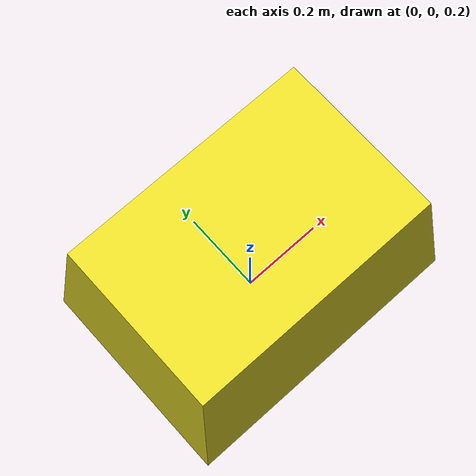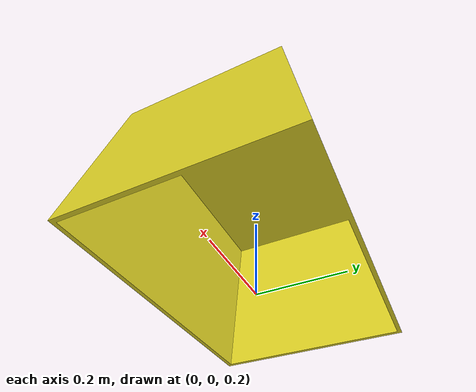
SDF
<?xml version="1.0" ?>
<sdf version="1.5">
  <model name="AIGC2_basket">
	<link name='chassis1'>
        <pose>0.0 0 0.6 3.141592 0 0</pose>
      <inertial>
        <mass>10.3</mass>
        <inertia>
          <ixx>100.0347563</ixx>
          <ixy>0</ixy>
          <ixz>0</ixz>
          <iyy>100.0458929</iyy>
          <iyz>0</iyz>
          <izz>100.0977</izz>
        </inertia>
      </inertial>
		<collision name='collision1'>
			<geometry>
				<mesh>
				<scale>0.01 0.01 0.01</scale>
				<uri>model://AIGC2_basket/aigc_basket.stl</uri></mesh>
			</geometry>
		</collision>

		<visual name='visual1'>
			<geometry>
				<mesh>
				<scale>0.01 0.01 0.01</scale>
				<uri>model://AIGC2_basket/aigc_basket.stl</uri></mesh>
			</geometry>
		    <material>
		      <script>
		        <name>Gazebo/Yellow</name>
		        <uri>file://media/materials/scripts/gazebo.material</uri>
		      </script>
		    </material>
		</visual>
	</link>
  </model>
</sdf>
